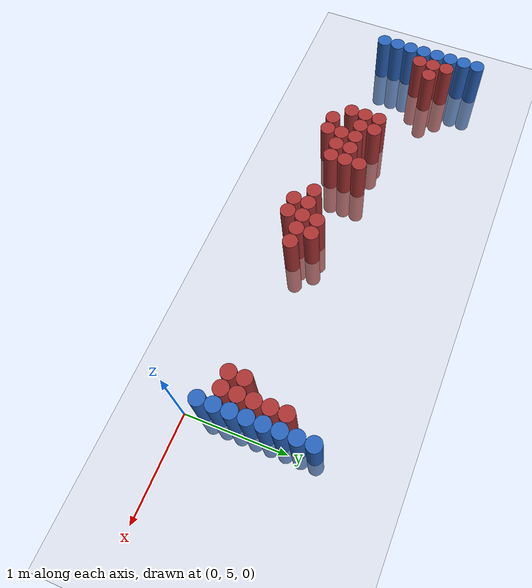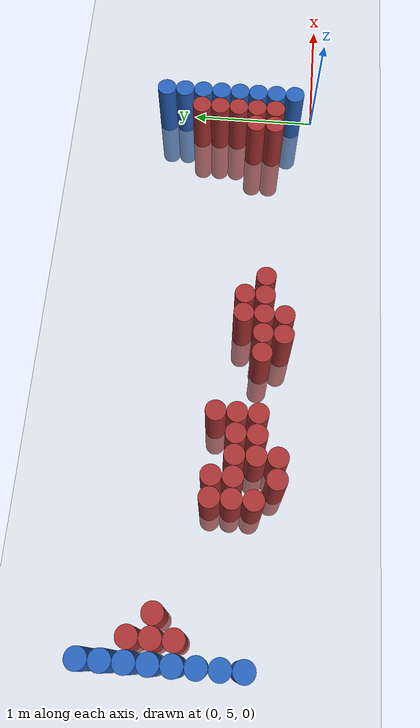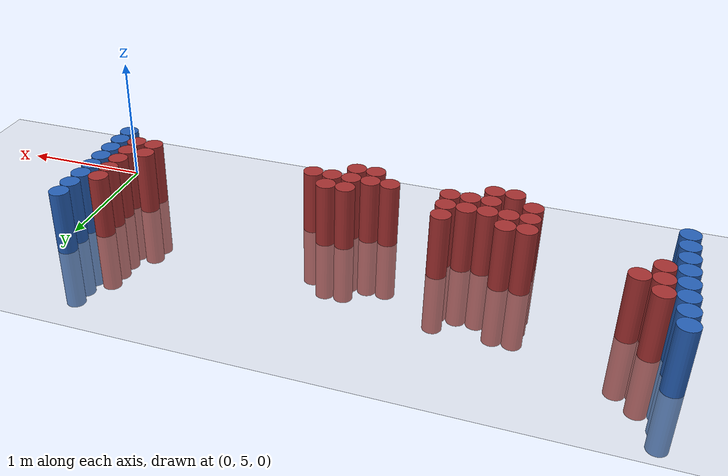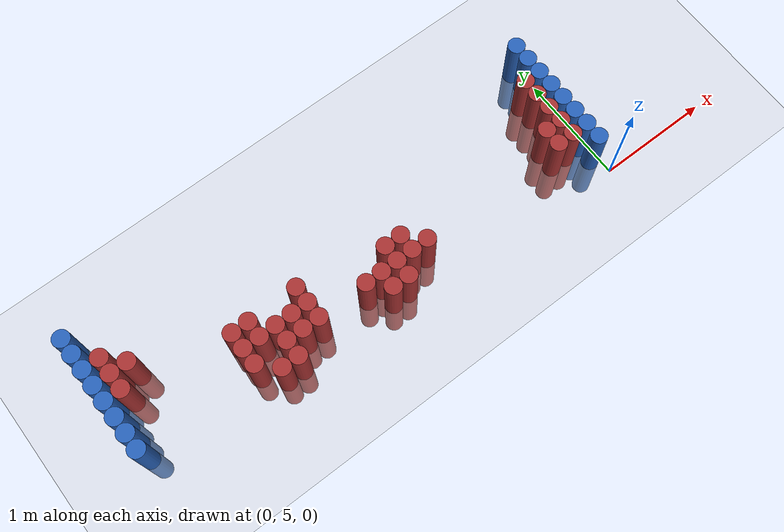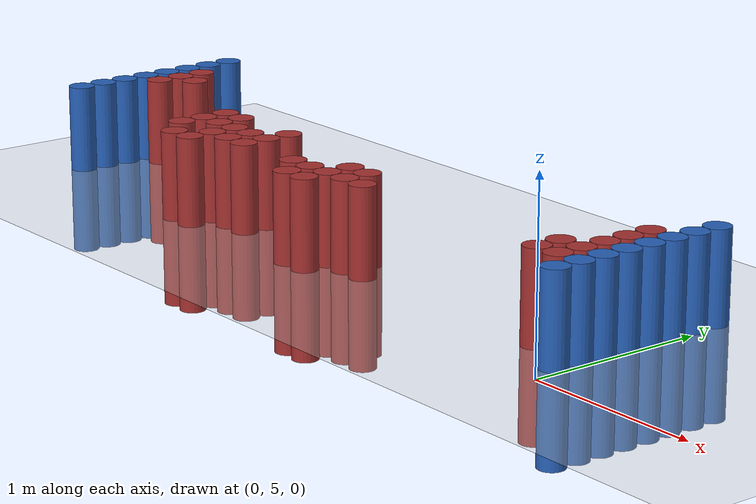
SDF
<sdf version="1.6">
 <world name="default">
  <model name="ground_plane">
   <static>1</static>
   <link name="link">
    <collision name="collision">
     <geometry><plane><normal>0 0 1</normal><size>100 100</size></plane></geometry>
     <surface><friction><ode><mu>100</mu><mu2>50</mu2></ode></friction></surface>
    </collision>
    <visual name="visual">
     <cast_shadows>0</cast_shadows>
     <geometry><plane><normal>0 0 1</normal><size>100 100</size></plane></geometry>
     <material>
      <script><uri>file://media/materials/scripts/gazebo.material</uri><name>Gazebo/Grey</name></script>
     </material>
    </visual>
   </link>
  </model>
  <model name="unit_cylinder_97">
   <static>1</static>
   <pose>-4.425000 5.325000 0.000000 0.000000 0.000000 0.000000</pose>
   <link name="link">
    <inertial>
     <mass>1</mass>
     <inertia><ixx>0.145833</ixx><ixy>0</ixy><ixz>0</ixz><iyy>0.145833</iyy><iyz>0</iyz><izz>0.125</izz></inertia>
    </inertial>
    <collision name="collision">
     <geometry><cylinder><radius>0.075000</radius><length>1</length></cylinder></geometry>
    </collision>
    <visual name="visual">
     <geometry><cylinder><radius>0.075000</radius><length>1</length></cylinder></geometry>
     <material>
      <ambient>0.152000 0.379000 0.720000 1</ambient>
      <diffuse>0.152000 0.379000 0.720000 1</diffuse>
     </material>
     <material>
      <script><name>Gazebo/Grey</name><uri>file://media/materials/scripts/gazebo.material</uri></script>
     </material>
    </visual>
   </link>
  </model>
  <model name="unit_cylinder_98">
   <static>1</static>
   <pose>-4.425000 5.475000 0.000000 0.000000 0.000000 0.000000</pose>
   <link name="link">
    <inertial>
     <mass>1</mass>
     <inertia><ixx>0.145833</ixx><ixy>0</ixy><ixz>0</ixz><iyy>0.145833</iyy><iyz>0</iyz><izz>0.125</izz></inertia>
    </inertial>
    <collision name="collision">
     <geometry><cylinder><radius>0.075000</radius><length>1</length></cylinder></geometry>
    </collision>
    <visual name="visual">
     <geometry><cylinder><radius>0.075000</radius><length>1</length></cylinder></geometry>
     <material>
      <ambient>0.152000 0.379000 0.720000 1</ambient>
      <diffuse>0.152000 0.379000 0.720000 1</diffuse>
     </material>
     <material>
      <script><name>Gazebo/Grey</name><uri>file://media/materials/scripts/gazebo.material</uri></script>
     </material>
    </visual>
   </link>
  </model>
  <model name="unit_cylinder_99">
   <static>1</static>
   <pose>-4.425000 5.625000 0.000000 0.000000 0.000000 0.000000</pose>
   <link name="link">
    <inertial>
     <mass>1</mass>
     <inertia><ixx>0.145833</ixx><ixy>0</ixy><ixz>0</ixz><iyy>0.145833</iyy><iyz>0</iyz><izz>0.125</izz></inertia>
    </inertial>
    <collision name="collision">
     <geometry><cylinder><radius>0.075000</radius><length>1</length></cylinder></geometry>
    </collision>
    <visual name="visual">
     <geometry><cylinder><radius>0.075000</radius><length>1</length></cylinder></geometry>
     <material>
      <ambient>0.152000 0.379000 0.720000 1</ambient>
      <diffuse>0.152000 0.379000 0.720000 1</diffuse>
     </material>
     <material>
      <script><name>Gazebo/Grey</name><uri>file://media/materials/scripts/gazebo.material</uri></script>
     </material>
    </visual>
   </link>
  </model>
  <model name="unit_cylinder_100">
   <static>1</static>
   <pose>-4.425000 5.775000 0.000000 0.000000 0.000000 0.000000</pose>
   <link name="link">
    <inertial>
     <mass>1</mass>
     <inertia><ixx>0.145833</ixx><ixy>0</ixy><ixz>0</ixz><iyy>0.145833</iyy><iyz>0</iyz><izz>0.125</izz></inertia>
    </inertial>
    <collision name="collision">
     <geometry><cylinder><radius>0.075000</radius><length>1</length></cylinder></geometry>
    </collision>
    <visual name="visual">
     <geometry><cylinder><radius>0.075000</radius><length>1</length></cylinder></geometry>
     <material>
      <ambient>0.152000 0.379000 0.720000 1</ambient>
      <diffuse>0.152000 0.379000 0.720000 1</diffuse>
     </material>
     <material>
      <script><name>Gazebo/Grey</name><uri>file://media/materials/scripts/gazebo.material</uri></script>
     </material>
    </visual>
   </link>
  </model>
  <model name="unit_cylinder_101">
   <static>1</static>
   <pose>-4.425000 5.925000 0.000000 0.000000 0.000000 0.000000</pose>
   <link name="link">
    <inertial>
     <mass>1</mass>
     <inertia><ixx>0.145833</ixx><ixy>0</ixy><ixz>0</ixz><iyy>0.145833</iyy><iyz>0</iyz><izz>0.125</izz></inertia>
    </inertial>
    <collision name="collision">
     <geometry><cylinder><radius>0.075000</radius><length>1</length></cylinder></geometry>
    </collision>
    <visual name="visual">
     <geometry><cylinder><radius>0.075000</radius><length>1</length></cylinder></geometry>
     <material>
      <ambient>0.152000 0.379000 0.720000 1</ambient>
      <diffuse>0.152000 0.379000 0.720000 1</diffuse>
     </material>
     <material>
      <script><name>Gazebo/Grey</name><uri>file://media/materials/scripts/gazebo.material</uri></script>
     </material>
    </visual>
   </link>
  </model>
  <model name="unit_cylinder_102">
   <static>1</static>
   <pose>-4.425000 6.075000 0.000000 0.000000 0.000000 0.000000</pose>
   <link name="link">
    <inertial>
     <mass>1</mass>
     <inertia><ixx>0.145833</ixx><ixy>0</ixy><ixz>0</ixz><iyy>0.145833</iyy><iyz>0</iyz><izz>0.125</izz></inertia>
    </inertial>
    <collision name="collision">
     <geometry><cylinder><radius>0.075000</radius><length>1</length></cylinder></geometry>
    </collision>
    <visual name="visual">
     <geometry><cylinder><radius>0.075000</radius><length>1</length></cylinder></geometry>
     <material>
      <ambient>0.152000 0.379000 0.720000 1</ambient>
      <diffuse>0.152000 0.379000 0.720000 1</diffuse>
     </material>
     <material>
      <script><name>Gazebo/Grey</name><uri>file://media/materials/scripts/gazebo.material</uri></script>
     </material>
    </visual>
   </link>
  </model>
  <model name="unit_cylinder_103">
   <static>1</static>
   <pose>-4.425000 6.225000 0.000000 0.000000 0.000000 0.000000</pose>
   <link name="link">
    <inertial>
     <mass>1</mass>
     <inertia><ixx>0.145833</ixx><ixy>0</ixy><ixz>0</ixz><iyy>0.145833</iyy><iyz>0</iyz><izz>0.125</izz></inertia>
    </inertial>
    <collision name="collision">
     <geometry><cylinder><radius>0.075000</radius><length>1</length></cylinder></geometry>
    </collision>
    <visual name="visual">
     <geometry><cylinder><radius>0.075000</radius><length>1</length></cylinder></geometry>
     <material>
      <ambient>0.152000 0.379000 0.720000 1</ambient>
      <diffuse>0.152000 0.379000 0.720000 1</diffuse>
     </material>
     <material>
      <script><name>Gazebo/Grey</name><uri>file://media/materials/scripts/gazebo.material</uri></script>
     </material>
    </visual>
   </link>
  </model>
  <model name="unit_cylinder_104">
   <static>1</static>
   <pose>-4.425000 6.375000 0.000000 0.000000 0.000000 0.000000</pose>
   <link name="link">
    <inertial>
     <mass>1</mass>
     <inertia><ixx>0.145833</ixx><ixy>0</ixy><ixz>0</ixz><iyy>0.145833</iyy><iyz>0</iyz><izz>0.125</izz></inertia>
    </inertial>
    <collision name="collision">
     <geometry><cylinder><radius>0.075000</radius><length>1</length></cylinder></geometry>
    </collision>
    <visual name="visual">
     <geometry><cylinder><radius>0.075000</radius><length>1</length></cylinder></geometry>
     <material>
      <ambient>0.152000 0.379000 0.720000 1</ambient>
      <diffuse>0.152000 0.379000 0.720000 1</diffuse>
     </material>
     <material>
      <script><name>Gazebo/Grey</name><uri>file://media/materials/scripts/gazebo.material</uri></script>
     </material>
    </visual>
   </link>
  </model>
  <model name="unit_cylinder_127">
   <static>1</static>
   <pose>-4.275000 5.775000 0.000000 0.000000 0.000000 0.000000</pose>
   <link name="link">
    <inertial>
     <mass>1</mass>
     <inertia><ixx>0.145833</ixx><ixy>0</ixy><ixz>0</ixz><iyy>0.145833</iyy><iyz>0</iyz><izz>0.125</izz></inertia>
    </inertial>
    <collision name="collision">
     <geometry><cylinder><radius>0.075000</radius><length>1</length></cylinder></geometry>
    </collision>
    <visual name="visual">
     <geometry><cylinder><radius>0.075000</radius><length>1</length></cylinder></geometry>
     <material>
      <ambient>0.648000 0.192000 0.192000 1</ambient>
      <diffuse>0.648000 0.192000 0.192000 1</diffuse>
     </material>
     <material>
      <script><name>Gazebo/Grey</name><uri>file://media/materials/scripts/gazebo.material</uri></script>
     </material>
    </visual>
   </link>
  </model>
  <model name="unit_cylinder_128">
   <static>1</static>
   <pose>-4.275000 5.925000 0.000000 0.000000 0.000000 0.000000</pose>
   <link name="link">
    <inertial>
     <mass>1</mass>
     <inertia><ixx>0.145833</ixx><ixy>0</ixy><ixz>0</ixz><iyy>0.145833</iyy><iyz>0</iyz><izz>0.125</izz></inertia>
    </inertial>
    <collision name="collision">
     <geometry><cylinder><radius>0.075000</radius><length>1</length></cylinder></geometry>
    </collision>
    <visual name="visual">
     <geometry><cylinder><radius>0.075000</radius><length>1</length></cylinder></geometry>
     <material>
      <ambient>0.648000 0.192000 0.192000 1</ambient>
      <diffuse>0.648000 0.192000 0.192000 1</diffuse>
     </material>
     <material>
      <script><name>Gazebo/Grey</name><uri>file://media/materials/scripts/gazebo.material</uri></script>
     </material>
    </visual>
   </link>
  </model>
  <model name="unit_cylinder_129">
   <static>1</static>
   <pose>-4.275000 6.075000 0.000000 0.000000 0.000000 0.000000</pose>
   <link name="link">
    <inertial>
     <mass>1</mass>
     <inertia><ixx>0.145833</ixx><ixy>0</ixy><ixz>0</ixz><iyy>0.145833</iyy><iyz>0</iyz><izz>0.125</izz></inertia>
    </inertial>
    <collision name="collision">
     <geometry><cylinder><radius>0.075000</radius><length>1</length></cylinder></geometry>
    </collision>
    <visual name="visual">
     <geometry><cylinder><radius>0.075000</radius><length>1</length></cylinder></geometry>
     <material>
      <ambient>0.648000 0.192000 0.192000 1</ambient>
      <diffuse>0.648000 0.192000 0.192000 1</diffuse>
     </material>
     <material>
      <script><name>Gazebo/Grey</name><uri>file://media/materials/scripts/gazebo.material</uri></script>
     </material>
    </visual>
   </link>
  </model>
  <model name="unit_cylinder_137">
   <static>1</static>
   <pose>-4.125000 5.925000 0.000000 0.000000 0.000000 0.000000</pose>
   <link name="link">
    <inertial>
     <mass>1</mass>
     <inertia><ixx>0.145833</ixx><ixy>0</ixy><ixz>0</ixz><iyy>0.145833</iyy><iyz>0</iyz><izz>0.125</izz></inertia>
    </inertial>
    <collision name="collision">
     <geometry><cylinder><radius>0.075000</radius><length>1</length></cylinder></geometry>
    </collision>
    <visual name="visual">
     <geometry><cylinder><radius>0.075000</radius><length>1</length></cylinder></geometry>
     <material>
      <ambient>0.648000 0.192000 0.192000 1</ambient>
      <diffuse>0.648000 0.192000 0.192000 1</diffuse>
     </material>
     <material>
      <script><name>Gazebo/Grey</name><uri>file://media/materials/scripts/gazebo.material</uri></script>
     </material>
    </visual>
   </link>
  </model>
  <model name="unit_cylinder_143">
   <static>1</static>
   <pose>-3.375000 5.325000 0.000000 0.000000 0.000000 0.000000</pose>
   <link name="link">
    <inertial>
     <mass>1</mass>
     <inertia><ixx>0.145833</ixx><ixy>0</ixy><ixz>0</ixz><iyy>0.145833</iyy><iyz>0</iyz><izz>0.125</izz></inertia>
    </inertial>
    <collision name="collision">
     <geometry><cylinder><radius>0.075000</radius><length>1</length></cylinder></geometry>
    </collision>
    <visual name="visual">
     <geometry><cylinder><radius>0.075000</radius><length>1</length></cylinder></geometry>
     <material>
      <ambient>0.648000 0.192000 0.192000 1</ambient>
      <diffuse>0.648000 0.192000 0.192000 1</diffuse>
     </material>
     <material>
      <script><name>Gazebo/Grey</name><uri>file://media/materials/scripts/gazebo.material</uri></script>
     </material>
    </visual>
   </link>
  </model>
  <model name="unit_cylinder_144">
   <static>1</static>
   <pose>-3.375000 5.475000 0.000000 0.000000 0.000000 0.000000</pose>
   <link name="link">
    <inertial>
     <mass>1</mass>
     <inertia><ixx>0.145833</ixx><ixy>0</ixy><ixz>0</ixz><iyy>0.145833</iyy><iyz>0</iyz><izz>0.125</izz></inertia>
    </inertial>
    <collision name="collision">
     <geometry><cylinder><radius>0.075000</radius><length>1</length></cylinder></geometry>
    </collision>
    <visual name="visual">
     <geometry><cylinder><radius>0.075000</radius><length>1</length></cylinder></geometry>
     <material>
      <ambient>0.648000 0.192000 0.192000 1</ambient>
      <diffuse>0.648000 0.192000 0.192000 1</diffuse>
     </material>
     <material>
      <script><name>Gazebo/Grey</name><uri>file://media/materials/scripts/gazebo.material</uri></script>
     </material>
    </visual>
   </link>
  </model>
  <model name="unit_cylinder_145">
   <static>1</static>
   <pose>-3.375000 5.625000 0.000000 0.000000 0.000000 0.000000</pose>
   <link name="link">
    <inertial>
     <mass>1</mass>
     <inertia><ixx>0.145833</ixx><ixy>0</ixy><ixz>0</ixz><iyy>0.145833</iyy><iyz>0</iyz><izz>0.125</izz></inertia>
    </inertial>
    <collision name="collision">
     <geometry><cylinder><radius>0.075000</radius><length>1</length></cylinder></geometry>
    </collision>
    <visual name="visual">
     <geometry><cylinder><radius>0.075000</radius><length>1</length></cylinder></geometry>
     <material>
      <ambient>0.648000 0.192000 0.192000 1</ambient>
      <diffuse>0.648000 0.192000 0.192000 1</diffuse>
     </material>
     <material>
      <script><name>Gazebo/Grey</name><uri>file://media/materials/scripts/gazebo.material</uri></script>
     </material>
    </visual>
   </link>
  </model>
  <model name="unit_cylinder_146">
   <static>1</static>
   <pose>-3.225000 5.175000 0.000000 0.000000 0.000000 0.000000</pose>
   <link name="link">
    <inertial>
     <mass>1</mass>
     <inertia><ixx>0.145833</ixx><ixy>0</ixy><ixz>0</ixz><iyy>0.145833</iyy><iyz>0</iyz><izz>0.125</izz></inertia>
    </inertial>
    <collision name="collision">
     <geometry><cylinder><radius>0.075000</radius><length>1</length></cylinder></geometry>
    </collision>
    <visual name="visual">
     <geometry><cylinder><radius>0.075000</radius><length>1</length></cylinder></geometry>
     <material>
      <ambient>0.648000 0.192000 0.192000 1</ambient>
      <diffuse>0.648000 0.192000 0.192000 1</diffuse>
     </material>
     <material>
      <script><name>Gazebo/Grey</name><uri>file://media/materials/scripts/gazebo.material</uri></script>
     </material>
    </visual>
   </link>
  </model>
  <model name="unit_cylinder_147">
   <static>1</static>
   <pose>-3.225000 5.475000 0.000000 0.000000 0.000000 0.000000</pose>
   <link name="link">
    <inertial>
     <mass>1</mass>
     <inertia><ixx>0.145833</ixx><ixy>0</ixy><ixz>0</ixz><iyy>0.145833</iyy><iyz>0</iyz><izz>0.125</izz></inertia>
    </inertial>
    <collision name="collision">
     <geometry><cylinder><radius>0.075000</radius><length>1</length></cylinder></geometry>
    </collision>
    <visual name="visual">
     <geometry><cylinder><radius>0.075000</radius><length>1</length></cylinder></geometry>
     <material>
      <ambient>0.648000 0.192000 0.192000 1</ambient>
      <diffuse>0.648000 0.192000 0.192000 1</diffuse>
     </material>
     <material>
      <script><name>Gazebo/Grey</name><uri>file://media/materials/scripts/gazebo.material</uri></script>
     </material>
    </visual>
   </link>
  </model>
  <model name="unit_cylinder_148">
   <static>1</static>
   <pose>-3.225000 5.625000 0.000000 0.000000 0.000000 0.000000</pose>
   <link name="link">
    <inertial>
     <mass>1</mass>
     <inertia><ixx>0.145833</ixx><ixy>0</ixy><ixz>0</ixz><iyy>0.145833</iyy><iyz>0</iyz><izz>0.125</izz></inertia>
    </inertial>
    <collision name="collision">
     <geometry><cylinder><radius>0.075000</radius><length>1</length></cylinder></geometry>
    </collision>
    <visual name="visual">
     <geometry><cylinder><radius>0.075000</radius><length>1</length></cylinder></geometry>
     <material>
      <ambient>0.648000 0.192000 0.192000 1</ambient>
      <diffuse>0.648000 0.192000 0.192000 1</diffuse>
     </material>
     <material>
      <script><name>Gazebo/Grey</name><uri>file://media/materials/scripts/gazebo.material</uri></script>
     </material>
    </visual>
   </link>
  </model>
  <model name="unit_cylinder_149">
   <static>1</static>
   <pose>-3.075000 5.175000 0.000000 0.000000 0.000000 0.000000</pose>
   <link name="link">
    <inertial>
     <mass>1</mass>
     <inertia><ixx>0.145833</ixx><ixy>0</ixy><ixz>0</ixz><iyy>0.145833</iyy><iyz>0</iyz><izz>0.125</izz></inertia>
    </inertial>
    <collision name="collision">
     <geometry><cylinder><radius>0.075000</radius><length>1</length></cylinder></geometry>
    </collision>
    <visual name="visual">
     <geometry><cylinder><radius>0.075000</radius><length>1</length></cylinder></geometry>
     <material>
      <ambient>0.648000 0.192000 0.192000 1</ambient>
      <diffuse>0.648000 0.192000 0.192000 1</diffuse>
     </material>
     <material>
      <script><name>Gazebo/Grey</name><uri>file://media/materials/scripts/gazebo.material</uri></script>
     </material>
    </visual>
   </link>
  </model>
  <model name="unit_cylinder_150">
   <static>1</static>
   <pose>-3.075000 5.325000 0.000000 0.000000 0.000000 0.000000</pose>
   <link name="link">
    <inertial>
     <mass>1</mass>
     <inertia><ixx>0.145833</ixx><ixy>0</ixy><ixz>0</ixz><iyy>0.145833</iyy><iyz>0</iyz><izz>0.125</izz></inertia>
    </inertial>
    <collision name="collision">
     <geometry><cylinder><radius>0.075000</radius><length>1</length></cylinder></geometry>
    </collision>
    <visual name="visual">
     <geometry><cylinder><radius>0.075000</radius><length>1</length></cylinder></geometry>
     <material>
      <ambient>0.648000 0.192000 0.192000 1</ambient>
      <diffuse>0.648000 0.192000 0.192000 1</diffuse>
     </material>
     <material>
      <script><name>Gazebo/Grey</name><uri>file://media/materials/scripts/gazebo.material</uri></script>
     </material>
    </visual>
   </link>
  </model>
  <model name="unit_cylinder_151">
   <static>1</static>
   <pose>-3.075000 5.475000 0.000000 0.000000 0.000000 0.000000</pose>
   <link name="link">
    <inertial>
     <mass>1</mass>
     <inertia><ixx>0.145833</ixx><ixy>0</ixy><ixz>0</ixz><iyy>0.145833</iyy><iyz>0</iyz><izz>0.125</izz></inertia>
    </inertial>
    <collision name="collision">
     <geometry><cylinder><radius>0.075000</radius><length>1</length></cylinder></geometry>
    </collision>
    <visual name="visual">
     <geometry><cylinder><radius>0.075000</radius><length>1</length></cylinder></geometry>
     <material>
      <ambient>0.648000 0.192000 0.192000 1</ambient>
      <diffuse>0.648000 0.192000 0.192000 1</diffuse>
     </material>
     <material>
      <script><name>Gazebo/Grey</name><uri>file://media/materials/scripts/gazebo.material</uri></script>
     </material>
    </visual>
   </link>
  </model>
  <model name="unit_cylinder_154">
   <static>1</static>
   <pose>-2.925000 5.325000 0.000000 0.000000 0.000000 0.000000</pose>
   <link name="link">
    <inertial>
     <mass>1</mass>
     <inertia><ixx>0.145833</ixx><ixy>0</ixy><ixz>0</ixz><iyy>0.145833</iyy><iyz>0</iyz><izz>0.125</izz></inertia>
    </inertial>
    <collision name="collision">
     <geometry><cylinder><radius>0.075000</radius><length>1</length></cylinder></geometry>
    </collision>
    <visual name="visual">
     <geometry><cylinder><radius>0.075000</radius><length>1</length></cylinder></geometry>
     <material>
      <ambient>0.648000 0.192000 0.192000 1</ambient>
      <diffuse>0.648000 0.192000 0.192000 1</diffuse>
     </material>
     <material>
      <script><name>Gazebo/Grey</name><uri>file://media/materials/scripts/gazebo.material</uri></script>
     </material>
    </visual>
   </link>
  </model>
  <model name="unit_cylinder_155">
   <static>1</static>
   <pose>-2.925000 5.475000 0.000000 0.000000 0.000000 0.000000</pose>
   <link name="link">
    <inertial>
     <mass>1</mass>
     <inertia><ixx>0.145833</ixx><ixy>0</ixy><ixz>0</ixz><iyy>0.145833</iyy><iyz>0</iyz><izz>0.125</izz></inertia>
    </inertial>
    <collision name="collision">
     <geometry><cylinder><radius>0.075000</radius><length>1</length></cylinder></geometry>
    </collision>
    <visual name="visual">
     <geometry><cylinder><radius>0.075000</radius><length>1</length></cylinder></geometry>
     <material>
      <ambient>0.648000 0.192000 0.192000 1</ambient>
      <diffuse>0.648000 0.192000 0.192000 1</diffuse>
     </material>
     <material>
      <script><name>Gazebo/Grey</name><uri>file://media/materials/scripts/gazebo.material</uri></script>
     </material>
    </visual>
   </link>
  </model>
  <model name="unit_cylinder_157">
   <static>1</static>
   <pose>-2.775000 5.325000 0.000000 0.000000 0.000000 0.000000</pose>
   <link name="link">
    <inertial>
     <mass>1</mass>
     <inertia><ixx>0.145833</ixx><ixy>0</ixy><ixz>0</ixz><iyy>0.145833</iyy><iyz>0</iyz><izz>0.125</izz></inertia>
    </inertial>
    <collision name="collision">
     <geometry><cylinder><radius>0.075000</radius><length>1</length></cylinder></geometry>
    </collision>
    <visual name="visual">
     <geometry><cylinder><radius>0.075000</radius><length>1</length></cylinder></geometry>
     <material>
      <ambient>0.648000 0.192000 0.192000 1</ambient>
      <diffuse>0.648000 0.192000 0.192000 1</diffuse>
     </material>
     <material>
      <script><name>Gazebo/Grey</name><uri>file://media/materials/scripts/gazebo.material</uri></script>
     </material>
    </visual>
   </link>
  </model>
  <model name="unit_cylinder_158">
   <static>1</static>
   <pose>-2.775000 5.475000 0.000000 0.000000 0.000000 0.000000</pose>
   <link name="link">
    <inertial>
     <mass>1</mass>
     <inertia><ixx>0.145833</ixx><ixy>0</ixy><ixz>0</ixz><iyy>0.145833</iyy><iyz>0</iyz><izz>0.125</izz></inertia>
    </inertial>
    <collision name="collision">
     <geometry><cylinder><radius>0.075000</radius><length>1</length></cylinder></geometry>
    </collision>
    <visual name="visual">
     <geometry><cylinder><radius>0.075000</radius><length>1</length></cylinder></geometry>
     <material>
      <ambient>0.648000 0.192000 0.192000 1</ambient>
      <diffuse>0.648000 0.192000 0.192000 1</diffuse>
     </material>
     <material>
      <script><name>Gazebo/Grey</name><uri>file://media/materials/scripts/gazebo.material</uri></script>
     </material>
    </visual>
   </link>
  </model>
  <model name="unit_cylinder_159">
   <static>1</static>
   <pose>-2.775000 5.625000 0.000000 0.000000 0.000000 0.000000</pose>
   <link name="link">
    <inertial>
     <mass>1</mass>
     <inertia><ixx>0.145833</ixx><ixy>0</ixy><ixz>0</ixz><iyy>0.145833</iyy><iyz>0</iyz><izz>0.125</izz></inertia>
    </inertial>
    <collision name="collision">
     <geometry><cylinder><radius>0.075000</radius><length>1</length></cylinder></geometry>
    </collision>
    <visual name="visual">
     <geometry><cylinder><radius>0.075000</radius><length>1</length></cylinder></geometry>
     <material>
      <ambient>0.648000 0.192000 0.192000 1</ambient>
      <diffuse>0.648000 0.192000 0.192000 1</diffuse>
     </material>
     <material>
      <script><name>Gazebo/Grey</name><uri>file://media/materials/scripts/gazebo.material</uri></script>
     </material>
    </visual>
   </link>
  </model>
  <model name="unit_cylinder_169">
   <static>1</static>
   <pose>-2.325000 5.325000 0.000000 0.000000 0.000000 0.000000</pose>
   <link name="link">
    <inertial>
     <mass>1</mass>
     <inertia><ixx>0.145833</ixx><ixy>0</ixy><ixz>0</ixz><iyy>0.145833</iyy><iyz>0</iyz><izz>0.125</izz></inertia>
    </inertial>
    <collision name="collision">
     <geometry><cylinder><radius>0.075000</radius><length>1</length></cylinder></geometry>
    </collision>
    <visual name="visual">
     <geometry><cylinder><radius>0.075000</radius><length>1</length></cylinder></geometry>
     <material>
      <ambient>0.648000 0.192000 0.192000 1</ambient>
      <diffuse>0.648000 0.192000 0.192000 1</diffuse>
     </material>
     <material>
      <script><name>Gazebo/Grey</name><uri>file://media/materials/scripts/gazebo.material</uri></script>
     </material>
    </visual>
   </link>
  </model>
  <model name="unit_cylinder_174">
   <static>1</static>
   <pose>-2.175000 5.175000 0.000000 0.000000 0.000000 0.000000</pose>
   <link name="link">
    <inertial>
     <mass>1</mass>
     <inertia><ixx>0.145833</ixx><ixy>0</ixy><ixz>0</ixz><iyy>0.145833</iyy><iyz>0</iyz><izz>0.125</izz></inertia>
    </inertial>
    <collision name="collision">
     <geometry><cylinder><radius>0.075000</radius><length>1</length></cylinder></geometry>
    </collision>
    <visual name="visual">
     <geometry><cylinder><radius>0.075000</radius><length>1</length></cylinder></geometry>
     <material>
      <ambient>0.648000 0.192000 0.192000 1</ambient>
      <diffuse>0.648000 0.192000 0.192000 1</diffuse>
     </material>
     <material>
      <script><name>Gazebo/Grey</name><uri>file://media/materials/scripts/gazebo.material</uri></script>
     </material>
    </visual>
   </link>
  </model>
  <model name="unit_cylinder_175">
   <static>1</static>
   <pose>-2.175000 5.325000 0.000000 0.000000 0.000000 0.000000</pose>
   <link name="link">
    <inertial>
     <mass>1</mass>
     <inertia><ixx>0.145833</ixx><ixy>0</ixy><ixz>0</ixz><iyy>0.145833</iyy><iyz>0</iyz><izz>0.125</izz></inertia>
    </inertial>
    <collision name="collision">
     <geometry><cylinder><radius>0.075000</radius><length>1</length></cylinder></geometry>
    </collision>
    <visual name="visual">
     <geometry><cylinder><radius>0.075000</radius><length>1</length></cylinder></geometry>
     <material>
      <ambient>0.648000 0.192000 0.192000 1</ambient>
      <diffuse>0.648000 0.192000 0.192000 1</diffuse>
     </material>
     <material>
      <script><name>Gazebo/Grey</name><uri>file://media/materials/scripts/gazebo.material</uri></script>
     </material>
    </visual>
   </link>
  </model>
  <model name="unit_cylinder_177">
   <static>1</static>
   <pose>-2.025000 5.175000 0.000000 0.000000 0.000000 0.000000</pose>
   <link name="link">
    <inertial>
     <mass>1</mass>
     <inertia><ixx>0.145833</ixx><ixy>0</ixy><ixz>0</ixz><iyy>0.145833</iyy><iyz>0</iyz><izz>0.125</izz></inertia>
    </inertial>
    <collision name="collision">
     <geometry><cylinder><radius>0.075000</radius><length>1</length></cylinder></geometry>
    </collision>
    <visual name="visual">
     <geometry><cylinder><radius>0.075000</radius><length>1</length></cylinder></geometry>
     <material>
      <ambient>0.648000 0.192000 0.192000 1</ambient>
      <diffuse>0.648000 0.192000 0.192000 1</diffuse>
     </material>
     <material>
      <script><name>Gazebo/Grey</name><uri>file://media/materials/scripts/gazebo.material</uri></script>
     </material>
    </visual>
   </link>
  </model>
  <model name="unit_cylinder_178">
   <static>1</static>
   <pose>-2.025000 5.325000 0.000000 0.000000 0.000000 0.000000</pose>
   <link name="link">
    <inertial>
     <mass>1</mass>
     <inertia><ixx>0.145833</ixx><ixy>0</ixy><ixz>0</ixz><iyy>0.145833</iyy><iyz>0</iyz><izz>0.125</izz></inertia>
    </inertial>
    <collision name="collision">
     <geometry><cylinder><radius>0.075000</radius><length>1</length></cylinder></geometry>
    </collision>
    <visual name="visual">
     <geometry><cylinder><radius>0.075000</radius><length>1</length></cylinder></geometry>
     <material>
      <ambient>0.648000 0.192000 0.192000 1</ambient>
      <diffuse>0.648000 0.192000 0.192000 1</diffuse>
     </material>
     <material>
      <script><name>Gazebo/Grey</name><uri>file://media/materials/scripts/gazebo.material</uri></script>
     </material>
    </visual>
   </link>
  </model>
  <model name="unit_cylinder_179">
   <static>1</static>
   <pose>-2.025000 5.475000 0.000000 0.000000 0.000000 0.000000</pose>
   <link name="link">
    <inertial>
     <mass>1</mass>
     <inertia><ixx>0.145833</ixx><ixy>0</ixy><ixz>0</ixz><iyy>0.145833</iyy><iyz>0</iyz><izz>0.125</izz></inertia>
    </inertial>
    <collision name="collision">
     <geometry><cylinder><radius>0.075000</radius><length>1</length></cylinder></geometry>
    </collision>
    <visual name="visual">
     <geometry><cylinder><radius>0.075000</radius><length>1</length></cylinder></geometry>
     <material>
      <ambient>0.648000 0.192000 0.192000 1</ambient>
      <diffuse>0.648000 0.192000 0.192000 1</diffuse>
     </material>
     <material>
      <script><name>Gazebo/Grey</name><uri>file://media/materials/scripts/gazebo.material</uri></script>
     </material>
    </visual>
   </link>
  </model>
  <model name="unit_cylinder_182">
   <static>1</static>
   <pose>-1.875000 5.325000 0.000000 0.000000 0.000000 0.000000</pose>
   <link name="link">
    <inertial>
     <mass>1</mass>
     <inertia><ixx>0.145833</ixx><ixy>0</ixy><ixz>0</ixz><iyy>0.145833</iyy><iyz>0</iyz><izz>0.125</izz></inertia>
    </inertial>
    <collision name="collision">
     <geometry><cylinder><radius>0.075000</radius><length>1</length></cylinder></geometry>
    </collision>
    <visual name="visual">
     <geometry><cylinder><radius>0.075000</radius><length>1</length></cylinder></geometry>
     <material>
      <ambient>0.648000 0.192000 0.192000 1</ambient>
      <diffuse>0.648000 0.192000 0.192000 1</diffuse>
     </material>
     <material>
      <script><name>Gazebo/Grey</name><uri>file://media/materials/scripts/gazebo.material</uri></script>
     </material>
    </visual>
   </link>
  </model>
  <model name="unit_cylinder_183">
   <static>1</static>
   <pose>-1.875000 5.475000 0.000000 0.000000 0.000000 0.000000</pose>
   <link name="link">
    <inertial>
     <mass>1</mass>
     <inertia><ixx>0.145833</ixx><ixy>0</ixy><ixz>0</ixz><iyy>0.145833</iyy><iyz>0</iyz><izz>0.125</izz></inertia>
    </inertial>
    <collision name="collision">
     <geometry><cylinder><radius>0.075000</radius><length>1</length></cylinder></geometry>
    </collision>
    <visual name="visual">
     <geometry><cylinder><radius>0.075000</radius><length>1</length></cylinder></geometry>
     <material>
      <ambient>0.648000 0.192000 0.192000 1</ambient>
      <diffuse>0.648000 0.192000 0.192000 1</diffuse>
     </material>
     <material>
      <script><name>Gazebo/Grey</name><uri>file://media/materials/scripts/gazebo.material</uri></script>
     </material>
    </visual>
   </link>
  </model>
  <model name="unit_cylinder_187">
   <static>1</static>
   <pose>-1.725000 5.325000 0.000000 0.000000 0.000000 0.000000</pose>
   <link name="link">
    <inertial>
     <mass>1</mass>
     <inertia><ixx>0.145833</ixx><ixy>0</ixy><ixz>0</ixz><iyy>0.145833</iyy><iyz>0</iyz><izz>0.125</izz></inertia>
    </inertial>
    <collision name="collision">
     <geometry><cylinder><radius>0.075000</radius><length>1</length></cylinder></geometry>
    </collision>
    <visual name="visual">
     <geometry><cylinder><radius>0.075000</radius><length>1</length></cylinder></geometry>
     <material>
      <ambient>0.648000 0.192000 0.192000 1</ambient>
      <diffuse>0.648000 0.192000 0.192000 1</diffuse>
     </material>
     <material>
      <script><name>Gazebo/Grey</name><uri>file://media/materials/scripts/gazebo.material</uri></script>
     </material>
    </visual>
   </link>
  </model>
  <model name="unit_cylinder_198">
   <static>1</static>
   <pose>-0.375000 5.325000 0.000000 0.000000 0.000000 0.000000</pose>
   <link name="link">
    <inertial>
     <mass>1</mass>
     <inertia><ixx>0.145833</ixx><ixy>0</ixy><ixz>0</ixz><iyy>0.145833</iyy><iyz>0</iyz><izz>0.125</izz></inertia>
    </inertial>
    <collision name="collision">
     <geometry><cylinder><radius>0.075000</radius><length>1</length></cylinder></geometry>
    </collision>
    <visual name="visual">
     <geometry><cylinder><radius>0.075000</radius><length>1</length></cylinder></geometry>
     <material>
      <ambient>0.648000 0.192000 0.192000 1</ambient>
      <diffuse>0.648000 0.192000 0.192000 1</diffuse>
     </material>
     <material>
      <script><name>Gazebo/Grey</name><uri>file://media/materials/scripts/gazebo.material</uri></script>
     </material>
    </visual>
   </link>
  </model>
  <model name="unit_cylinder_199">
   <static>1</static>
   <pose>-0.375000 5.475000 0.000000 0.000000 0.000000 0.000000</pose>
   <link name="link">
    <inertial>
     <mass>1</mass>
     <inertia><ixx>0.145833</ixx><ixy>0</ixy><ixz>0</ixz><iyy>0.145833</iyy><iyz>0</iyz><izz>0.125</izz></inertia>
    </inertial>
    <collision name="collision">
     <geometry><cylinder><radius>0.075000</radius><length>1</length></cylinder></geometry>
    </collision>
    <visual name="visual">
     <geometry><cylinder><radius>0.075000</radius><length>1</length></cylinder></geometry>
     <material>
      <ambient>0.648000 0.192000 0.192000 1</ambient>
      <diffuse>0.648000 0.192000 0.192000 1</diffuse>
     </material>
     <material>
      <script><name>Gazebo/Grey</name><uri>file://media/materials/scripts/gazebo.material</uri></script>
     </material>
    </visual>
   </link>
  </model>
  <model name="unit_cylinder_203">
   <static>1</static>
   <pose>-0.225000 5.325000 0.000000 0.000000 0.000000 0.000000</pose>
   <link name="link">
    <inertial>
     <mass>1</mass>
     <inertia><ixx>0.145833</ixx><ixy>0</ixy><ixz>0</ixz><iyy>0.145833</iyy><iyz>0</iyz><izz>0.125</izz></inertia>
    </inertial>
    <collision name="collision">
     <geometry><cylinder><radius>0.075000</radius><length>1</length></cylinder></geometry>
    </collision>
    <visual name="visual">
     <geometry><cylinder><radius>0.075000</radius><length>1</length></cylinder></geometry>
     <material>
      <ambient>0.648000 0.192000 0.192000 1</ambient>
      <diffuse>0.648000 0.192000 0.192000 1</diffuse>
     </material>
     <material>
      <script><name>Gazebo/Grey</name><uri>file://media/materials/scripts/gazebo.material</uri></script>
     </material>
    </visual>
   </link>
  </model>
  <model name="unit_cylinder_204">
   <static>1</static>
   <pose>-0.225000 5.475000 0.000000 0.000000 0.000000 0.000000</pose>
   <link name="link">
    <inertial>
     <mass>1</mass>
     <inertia><ixx>0.145833</ixx><ixy>0</ixy><ixz>0</ixz><iyy>0.145833</iyy><iyz>0</iyz><izz>0.125</izz></inertia>
    </inertial>
    <collision name="collision">
     <geometry><cylinder><radius>0.075000</radius><length>1</length></cylinder></geometry>
    </collision>
    <visual name="visual">
     <geometry><cylinder><radius>0.075000</radius><length>1</length></cylinder></geometry>
     <material>
      <ambient>0.648000 0.192000 0.192000 1</ambient>
      <diffuse>0.648000 0.192000 0.192000 1</diffuse>
     </material>
     <material>
      <script><name>Gazebo/Grey</name><uri>file://media/materials/scripts/gazebo.material</uri></script>
     </material>
    </visual>
   </link>
  </model>
  <model name="unit_cylinder_205">
   <static>1</static>
   <pose>-0.225000 5.625000 0.000000 0.000000 0.000000 0.000000</pose>
   <link name="link">
    <inertial>
     <mass>1</mass>
     <inertia><ixx>0.145833</ixx><ixy>0</ixy><ixz>0</ixz><iyy>0.145833</iyy><iyz>0</iyz><izz>0.125</izz></inertia>
    </inertial>
    <collision name="collision">
     <geometry><cylinder><radius>0.075000</radius><length>1</length></cylinder></geometry>
    </collision>
    <visual name="visual">
     <geometry><cylinder><radius>0.075000</radius><length>1</length></cylinder></geometry>
     <material>
      <ambient>0.648000 0.192000 0.192000 1</ambient>
      <diffuse>0.648000 0.192000 0.192000 1</diffuse>
     </material>
     <material>
      <script><name>Gazebo/Grey</name><uri>file://media/materials/scripts/gazebo.material</uri></script>
     </material>
    </visual>
   </link>
  </model>
  <model name="unit_cylinder_206">
   <static>1</static>
   <pose>-0.225000 5.775000 0.000000 0.000000 0.000000 0.000000</pose>
   <link name="link">
    <inertial>
     <mass>1</mass>
     <inertia><ixx>0.145833</ixx><ixy>0</ixy><ixz>0</ixz><iyy>0.145833</iyy><iyz>0</iyz><izz>0.125</izz></inertia>
    </inertial>
    <collision name="collision">
     <geometry><cylinder><radius>0.075000</radius><length>1</length></cylinder></geometry>
    </collision>
    <visual name="visual">
     <geometry><cylinder><radius>0.075000</radius><length>1</length></cylinder></geometry>
     <material>
      <ambient>0.648000 0.192000 0.192000 1</ambient>
      <diffuse>0.648000 0.192000 0.192000 1</diffuse>
     </material>
     <material>
      <script><name>Gazebo/Grey</name><uri>file://media/materials/scripts/gazebo.material</uri></script>
     </material>
    </visual>
   </link>
  </model>
  <model name="unit_cylinder_207">
   <static>1</static>
   <pose>-0.225000 5.925000 0.000000 0.000000 0.000000 0.000000</pose>
   <link name="link">
    <inertial>
     <mass>1</mass>
     <inertia><ixx>0.145833</ixx><ixy>0</ixy><ixz>0</ixz><iyy>0.145833</iyy><iyz>0</iyz><izz>0.125</izz></inertia>
    </inertial>
    <collision name="collision">
     <geometry><cylinder><radius>0.075000</radius><length>1</length></cylinder></geometry>
    </collision>
    <visual name="visual">
     <geometry><cylinder><radius>0.075000</radius><length>1</length></cylinder></geometry>
     <material>
      <ambient>0.648000 0.192000 0.192000 1</ambient>
      <diffuse>0.648000 0.192000 0.192000 1</diffuse>
     </material>
     <material>
      <script><name>Gazebo/Grey</name><uri>file://media/materials/scripts/gazebo.material</uri></script>
     </material>
    </visual>
   </link>
  </model>
  <model name="unit_cylinder_218">
   <static>1</static>
   <pose>-0.075000 5.175000 0.000000 0.000000 0.000000 0.000000</pose>
   <link name="link">
    <inertial>
     <mass>1</mass>
     <inertia><ixx>0.145833</ixx><ixy>0</ixy><ixz>0</ixz><iyy>0.145833</iyy><iyz>0</iyz><izz>0.125</izz></inertia>
    </inertial>
    <collision name="collision">
     <geometry><cylinder><radius>0.075000</radius><length>1</length></cylinder></geometry>
    </collision>
    <visual name="visual">
     <geometry><cylinder><radius>0.075000</radius><length>1</length></cylinder></geometry>
     <material>
      <ambient>0.152000 0.379000 0.720000 1</ambient>
      <diffuse>0.152000 0.379000 0.720000 1</diffuse>
     </material>
     <material>
      <script><name>Gazebo/Grey</name><uri>file://media/materials/scripts/gazebo.material</uri></script>
     </material>
    </visual>
   </link>
  </model>
  <model name="unit_cylinder_219">
   <static>1</static>
   <pose>-0.075000 5.325000 0.000000 0.000000 0.000000 0.000000</pose>
   <link name="link">
    <inertial>
     <mass>1</mass>
     <inertia><ixx>0.145833</ixx><ixy>0</ixy><ixz>0</ixz><iyy>0.145833</iyy><iyz>0</iyz><izz>0.125</izz></inertia>
    </inertial>
    <collision name="collision">
     <geometry><cylinder><radius>0.075000</radius><length>1</length></cylinder></geometry>
    </collision>
    <visual name="visual">
     <geometry><cylinder><radius>0.075000</radius><length>1</length></cylinder></geometry>
     <material>
      <ambient>0.152000 0.379000 0.720000 1</ambient>
      <diffuse>0.152000 0.379000 0.720000 1</diffuse>
     </material>
     <material>
      <script><name>Gazebo/Grey</name><uri>file://media/materials/scripts/gazebo.material</uri></script>
     </material>
    </visual>
   </link>
  </model>
  <model name="unit_cylinder_220">
   <static>1</static>
   <pose>-0.075000 5.475000 0.000000 0.000000 0.000000 0.000000</pose>
   <link name="link">
    <inertial>
     <mass>1</mass>
     <inertia><ixx>0.145833</ixx><ixy>0</ixy><ixz>0</ixz><iyy>0.145833</iyy><iyz>0</iyz><izz>0.125</izz></inertia>
    </inertial>
    <collision name="collision">
     <geometry><cylinder><radius>0.075000</radius><length>1</length></cylinder></geometry>
    </collision>
    <visual name="visual">
     <geometry><cylinder><radius>0.075000</radius><length>1</length></cylinder></geometry>
     <material>
      <ambient>0.152000 0.379000 0.720000 1</ambient>
      <diffuse>0.152000 0.379000 0.720000 1</diffuse>
     </material>
     <material>
      <script><name>Gazebo/Grey</name><uri>file://media/materials/scripts/gazebo.material</uri></script>
     </material>
    </visual>
   </link>
  </model>
  <model name="unit_cylinder_221">
   <static>1</static>
   <pose>-0.075000 5.625000 0.000000 0.000000 0.000000 0.000000</pose>
   <link name="link">
    <inertial>
     <mass>1</mass>
     <inertia><ixx>0.145833</ixx><ixy>0</ixy><ixz>0</ixz><iyy>0.145833</iyy><iyz>0</iyz><izz>0.125</izz></inertia>
    </inertial>
    <collision name="collision">
     <geometry><cylinder><radius>0.075000</radius><length>1</length></cylinder></geometry>
    </collision>
    <visual name="visual">
     <geometry><cylinder><radius>0.075000</radius><length>1</length></cylinder></geometry>
     <material>
      <ambient>0.152000 0.379000 0.720000 1</ambient>
      <diffuse>0.152000 0.379000 0.720000 1</diffuse>
     </material>
     <material>
      <script><name>Gazebo/Grey</name><uri>file://media/materials/scripts/gazebo.material</uri></script>
     </material>
    </visual>
   </link>
  </model>
  <model name="unit_cylinder_222">
   <static>1</static>
   <pose>-0.075000 5.775000 0.000000 0.000000 0.000000 0.000000</pose>
   <link name="link">
    <inertial>
     <mass>1</mass>
     <inertia><ixx>0.145833</ixx><ixy>0</ixy><ixz>0</ixz><iyy>0.145833</iyy><iyz>0</iyz><izz>0.125</izz></inertia>
    </inertial>
    <collision name="collision">
     <geometry><cylinder><radius>0.075000</radius><length>1</length></cylinder></geometry>
    </collision>
    <visual name="visual">
     <geometry><cylinder><radius>0.075000</radius><length>1</length></cylinder></geometry>
     <material>
      <ambient>0.152000 0.379000 0.720000 1</ambient>
      <diffuse>0.152000 0.379000 0.720000 1</diffuse>
     </material>
     <material>
      <script><name>Gazebo/Grey</name><uri>file://media/materials/scripts/gazebo.material</uri></script>
     </material>
    </visual>
   </link>
  </model>
  <model name="unit_cylinder_223">
   <static>1</static>
   <pose>-0.075000 5.925000 0.000000 0.000000 0.000000 0.000000</pose>
   <link name="link">
    <inertial>
     <mass>1</mass>
     <inertia><ixx>0.145833</ixx><ixy>0</ixy><ixz>0</ixz><iyy>0.145833</iyy><iyz>0</iyz><izz>0.125</izz></inertia>
    </inertial>
    <collision name="collision">
     <geometry><cylinder><radius>0.075000</radius><length>1</length></cylinder></geometry>
    </collision>
    <visual name="visual">
     <geometry><cylinder><radius>0.075000</radius><length>1</length></cylinder></geometry>
     <material>
      <ambient>0.152000 0.379000 0.720000 1</ambient>
      <diffuse>0.152000 0.379000 0.720000 1</diffuse>
     </material>
     <material>
      <script><name>Gazebo/Grey</name><uri>file://media/materials/scripts/gazebo.material</uri></script>
     </material>
    </visual>
   </link>
  </model>
  <model name="unit_cylinder_224">
   <static>1</static>
   <pose>-0.075000 6.075000 0.000000 0.000000 0.000000 0.000000</pose>
   <link name="link">
    <inertial>
     <mass>1</mass>
     <inertia><ixx>0.145833</ixx><ixy>0</ixy><ixz>0</ixz><iyy>0.145833</iyy><iyz>0</iyz><izz>0.125</izz></inertia>
    </inertial>
    <collision name="collision">
     <geometry><cylinder><radius>0.075000</radius><length>1</length></cylinder></geometry>
    </collision>
    <visual name="visual">
     <geometry><cylinder><radius>0.075000</radius><length>1</length></cylinder></geometry>
     <material>
      <ambient>0.152000 0.379000 0.720000 1</ambient>
      <diffuse>0.152000 0.379000 0.720000 1</diffuse>
     </material>
     <material>
      <script><name>Gazebo/Grey</name><uri>file://media/materials/scripts/gazebo.material</uri></script>
     </material>
    </visual>
   </link>
  </model>
  <model name="unit_cylinder_225">
   <static>1</static>
   <pose>-0.075000 6.225000 0.000000 0.000000 0.000000 0.000000</pose>
   <link name="link">
    <inertial>
     <mass>1</mass>
     <inertia><ixx>0.145833</ixx><ixy>0</ixy><ixz>0</ixz><iyy>0.145833</iyy><iyz>0</iyz><izz>0.125</izz></inertia>
    </inertial>
    <collision name="collision">
     <geometry><cylinder><radius>0.075000</radius><length>1</length></cylinder></geometry>
    </collision>
    <visual name="visual">
     <geometry><cylinder><radius>0.075000</radius><length>1</length></cylinder></geometry>
     <material>
      <ambient>0.152000 0.379000 0.720000 1</ambient>
      <diffuse>0.152000 0.379000 0.720000 1</diffuse>
     </material>
     <material>
      <script><name>Gazebo/Grey</name><uri>file://media/materials/scripts/gazebo.material</uri></script>
     </material>
    </visual>
   </link>
  </model>
 </world>
</sdf>
